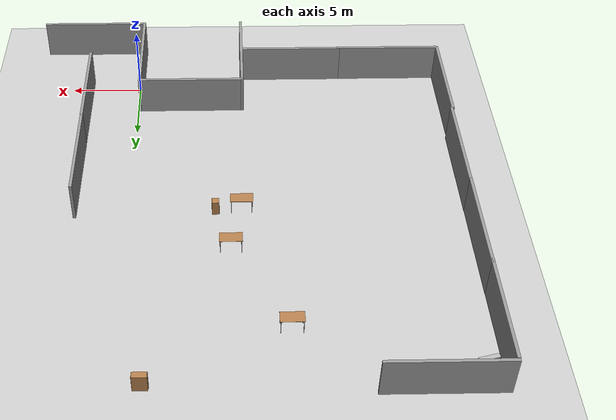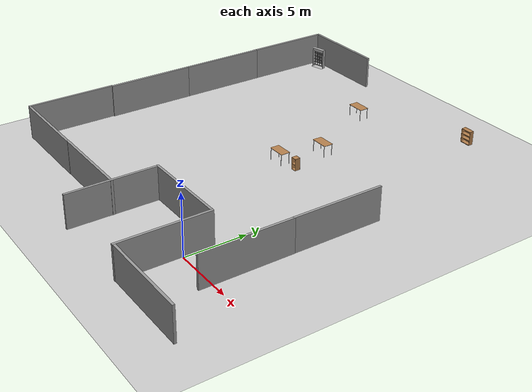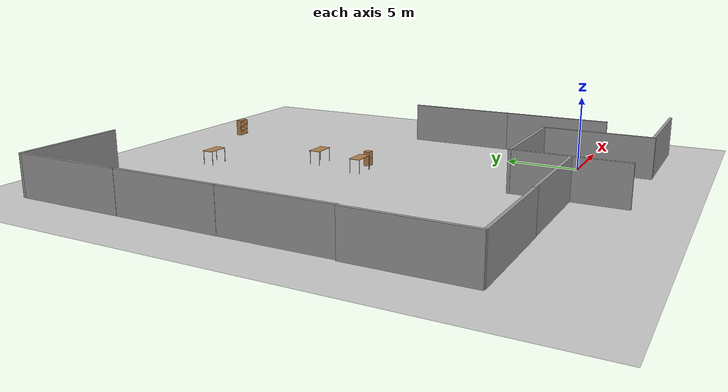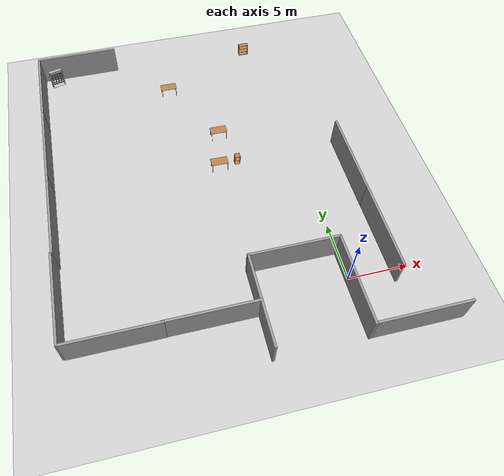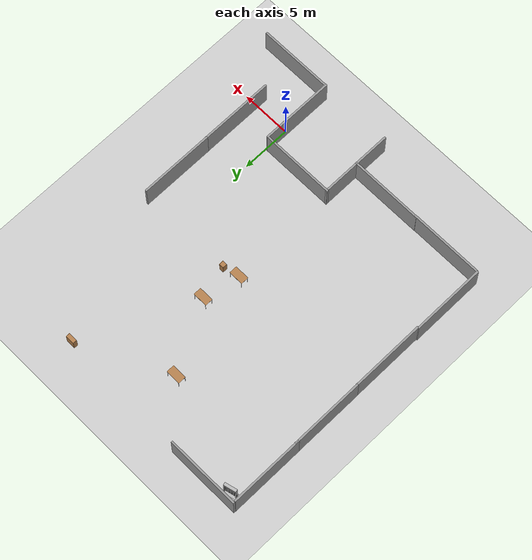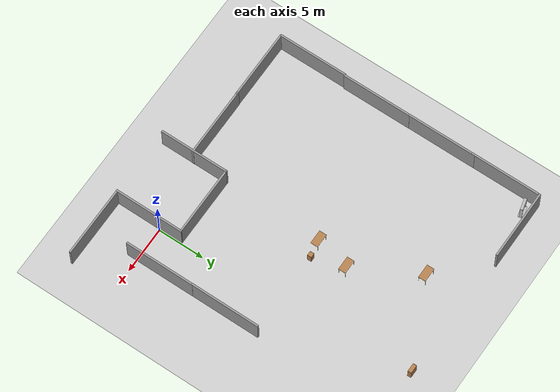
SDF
<sdf version="1.6">
 <world name="default">
  <light name="sun" type="directional">
   <cast_shadows>0</cast_shadows>
   <pose>0 0 10 0 -0 0</pose>
   <diffuse>0.8 0.8 0.8 1</diffuse>
   <specular>0.2 0.2 0.2 1</specular>
   <attenuation>
    <range>1000</range>
    <constant>0.9</constant>
    <linear>0.01</linear>
    <quadratic>0.001</quadratic>
   </attenuation>
   <direction>-0.5 0.1 -0.9</direction>
  </light>
  <gravity>0 0 -9.8</gravity>
  <magnetic_field>6e-06 2.3e-05 -4.2e-05</magnetic_field>
  <atmosphere type="adiabatic"/>
  <physics name="default_physics" default="0" type="ode">
   <max_step_size>0.001</max_step_size>
   <real_time_factor>1</real_time_factor>
   <real_time_update_rate>1000</real_time_update_rate>
  </physics>
  <scene><ambient>0.4 0.4 0.4 1</ambient><background>0.7 0.7 0.7 1</background><shadows>0</shadows></scene>
  <spherical_coordinates>
   <surface_model>EARTH_WGS84</surface_model>
   <latitude_deg>0</latitude_deg>
   <longitude_deg>0</longitude_deg>
   <elevation>0</elevation>
   <heading_deg>0</heading_deg>
  </spherical_coordinates>
  <include><uri>model://ground_plane</uri></include>
  <model name="grey_wall">
   <static>1</static>
   <link name="link">
    <pose>0 0 1.4 0 -0 0</pose>
    <collision name="collision"><geometry><box><size>7.5 0.2 2.8</size></box></geometry></collision>
    <visual name="visual">
     <cast_shadows>0</cast_shadows>
     <geometry><box><size>7.5 0.2 2.8</size></box></geometry>
     <material>
      <script>
       <uri>model://grey_wall/materials/scripts</uri>
       <uri>model://grey_wall/materials/textures</uri>
       <name>vrc/grey_wall</name>
      </script>
     </material>
    </visual>
   </link>
   <pose>3.63341 -4.86067 0 0 -0 0</pose>
  </model>
  <model name="grey_wall_clone">
   <static>1</static>
   <link name="link">
    <pose>0 0 1.4 0 -0 0</pose>
    <collision name="collision"><geometry><box><size>7.5 0.2 2.8</size></box></geometry></collision>
    <visual name="visual">
     <cast_shadows>0</cast_shadows>
     <geometry><box><size>7.5 0.2 2.8</size></box></geometry>
     <material>
      <script>
       <uri>model://grey_wall/materials/scripts</uri>
       <uri>model://grey_wall/materials/textures</uri>
       <name>vrc/grey_wall</name>
      </script>
     </material>
    </visual>
   </link>
   <pose>-18.4919 28.1193 0 0 -0 0</pose>
  </model>
  <model name="grey_wall_clone_0_clone">
   <static>1</static>
   <link name="link">
    <pose>0 0 1.4 0 -0 0</pose>
    <collision name="collision"><geometry><box><size>7.5 0.2 2.8</size></box></geometry></collision>
    <visual name="visual">
     <cast_shadows>0</cast_shadows>
     <geometry><box><size>7.5 0.2 2.8</size></box></geometry>
     <material>
      <script>
       <uri>model://grey_wall/materials/scripts</uri>
       <uri>model://grey_wall/materials/textures</uri>
       <name>vrc/grey_wall</name>
      </script>
     </material>
    </visual>
   </link>
   <pose>-22.1656 24.2441 0 0 -0 1.5708</pose>
  </model>
  <model name="grey_wall_clone_0_clone_0">
   <static>1</static>
   <link name="link">
    <pose>0 0 1.4 0 -0 0</pose>
    <collision name="collision"><geometry><box><size>7.5 0.2 2.8</size></box></geometry></collision>
    <visual name="visual">
     <cast_shadows>0</cast_shadows>
     <geometry><box><size>7.5 0.2 2.8</size></box></geometry>
     <material>
      <script>
       <uri>model://grey_wall/materials/scripts</uri>
       <uri>model://grey_wall/materials/textures</uri>
       <name>vrc/grey_wall</name>
      </script>
     </material>
    </visual>
   </link>
   <pose>-22.1565 17.1441 0 0 -0 1.5708</pose>
  </model>
  <model name="grey_wall_clone_0_clone_1">
   <static>1</static>
   <link name="link">
    <pose>0 0 1.4 0 -0 0</pose>
    <collision name="collision"><geometry><box><size>7.5 0.2 2.8</size></box></geometry></collision>
    <visual name="visual">
     <cast_shadows>0</cast_shadows>
     <geometry><box><size>7.5 0.2 2.8</size></box></geometry>
     <material>
      <script>
       <uri>model://grey_wall/materials/scripts</uri>
       <uri>model://grey_wall/materials/textures</uri>
       <name>vrc/grey_wall</name>
      </script>
     </material>
    </visual>
   </link>
   <pose>-22.146 9.771 0 0 -0 1.5708</pose>
  </model>
  <model name="table_clone">
   <static>1</static>
   <link name="link">
    <collision name="surface">
     <pose>0 0 1 0 -0 0</pose>
     <geometry><box><size>1.5 0.8 0.03</size></box></geometry>
     <surface><friction><ode><mu>0.6</mu><mu2>0.6</mu2></ode></friction></surface>
    </collision>
    <visual name="visual1">
     <pose>0 0 1 0 -0 0</pose>
     <geometry><box><size>1.5 0.8 0.03</size></box></geometry>
     <material>
      <script><uri>file://media/materials/scripts/gazebo.material</uri><name>Gazebo/Wood</name></script>
     </material>
    </visual>
    <collision name="front_left_leg">
     <pose>0.68 0.38 0.5 0 -0 0</pose>
     <geometry><cylinder><radius>0.02</radius><length>1</length></cylinder></geometry>
    </collision>
    <visual name="front_left_leg">
     <pose>0.68 0.38 0.5 0 -0 0</pose>
     <geometry><cylinder><radius>0.02</radius><length>1</length></cylinder></geometry>
     <material>
      <script><uri>file://media/materials/scripts/gazebo.material</uri><name>Gazebo/Grey</name></script>
     </material>
    </visual>
    <collision name="front_right_leg">
     <pose>0.68 -0.38 0.5 0 -0 0</pose>
     <geometry><cylinder><radius>0.02</radius><length>1</length></cylinder></geometry>
    </collision>
    <visual name="front_right_leg">
     <pose>0.68 -0.38 0.5 0 -0 0</pose>
     <geometry><cylinder><radius>0.02</radius><length>1</length></cylinder></geometry>
     <material>
      <script><uri>file://media/materials/scripts/gazebo.material</uri><name>Gazebo/Grey</name></script>
     </material>
    </visual>
    <collision name="back_right_leg">
     <pose>-0.68 -0.38 0.5 0 -0 0</pose>
     <geometry><cylinder><radius>0.02</radius><length>1</length></cylinder></geometry>
    </collision>
    <visual name="back_right_leg">
     <pose>-0.68 -0.38 0.5 0 -0 0</pose>
     <geometry><cylinder><radius>0.02</radius><length>1</length></cylinder></geometry>
     <material>
      <script><uri>file://media/materials/scripts/gazebo.material</uri><name>Gazebo/Grey</name></script>
     </material>
    </visual>
    <collision name="back_left_leg">
     <pose>-0.68 0.38 0.5 0 -0 0</pose>
     <geometry><cylinder><radius>0.02</radius><length>1</length></cylinder></geometry>
    </collision>
    <visual name="back_left_leg">
     <pose>-0.68 0.38 0.5 0 -0 0</pose>
     <geometry><cylinder><radius>0.02</radius><length>1</length></cylinder></geometry>
     <material>
      <script><uri>file://media/materials/scripts/gazebo.material</uri><name>Gazebo/Grey</name></script>
     </material>
    </visual>
   </link>
   <pose>-6.65004 16.737 0 0 -0 0</pose>
  </model>
  <model name="table_clone_0">
   <static>1</static>
   <link name="link">
    <collision name="surface">
     <pose>0 0 1 0 -0 0</pose>
     <geometry><box><size>1.5 0.8 0.03</size></box></geometry>
     <surface><friction><ode><mu>0.6</mu><mu2>0.6</mu2></ode></friction></surface>
    </collision>
    <visual name="visual1">
     <pose>0 0 1 0 -0 0</pose>
     <geometry><box><size>1.5 0.8 0.03</size></box></geometry>
     <material>
      <script><uri>file://media/materials/scripts/gazebo.material</uri><name>Gazebo/Wood</name></script>
     </material>
    </visual>
    <collision name="front_left_leg">
     <pose>0.68 0.38 0.5 0 -0 0</pose>
     <geometry><cylinder><radius>0.02</radius><length>1</length></cylinder></geometry>
    </collision>
    <visual name="front_left_leg">
     <pose>0.68 0.38 0.5 0 -0 0</pose>
     <geometry><cylinder><radius>0.02</radius><length>1</length></cylinder></geometry>
     <material>
      <script><uri>file://media/materials/scripts/gazebo.material</uri><name>Gazebo/Grey</name></script>
     </material>
    </visual>
    <collision name="front_right_leg">
     <pose>0.68 -0.38 0.5 0 -0 0</pose>
     <geometry><cylinder><radius>0.02</radius><length>1</length></cylinder></geometry>
    </collision>
    <visual name="front_right_leg">
     <pose>0.68 -0.38 0.5 0 -0 0</pose>
     <geometry><cylinder><radius>0.02</radius><length>1</length></cylinder></geometry>
     <material>
      <script><uri>file://media/materials/scripts/gazebo.material</uri><name>Gazebo/Grey</name></script>
     </material>
    </visual>
    <collision name="back_right_leg">
     <pose>-0.68 -0.38 0.5 0 -0 0</pose>
     <geometry><cylinder><radius>0.02</radius><length>1</length></cylinder></geometry>
    </collision>
    <visual name="back_right_leg">
     <pose>-0.68 -0.38 0.5 0 -0 0</pose>
     <geometry><cylinder><radius>0.02</radius><length>1</length></cylinder></geometry>
     <material>
      <script><uri>file://media/materials/scripts/gazebo.material</uri><name>Gazebo/Grey</name></script>
     </material>
    </visual>
    <collision name="back_left_leg">
     <pose>-0.68 0.38 0.5 0 -0 0</pose>
     <geometry><cylinder><radius>0.02</radius><length>1</length></cylinder></geometry>
    </collision>
    <visual name="back_left_leg">
     <pose>-0.68 0.38 0.5 0 -0 0</pose>
     <geometry><cylinder><radius>0.02</radius><length>1</length></cylinder></geometry>
     <material>
      <script><uri>file://media/materials/scripts/gazebo.material</uri><name>Gazebo/Grey</name></script>
     </material>
    </visual>
   </link>
   <pose>-7.38643 13.0983 0 0 -0 0</pose>
  </model>
  <model name="cabinet">
   <static>1</static>
   <link name="cabinet_bottom_plate">
    <inertial>
     <pose>0 0 -1 0 -0 0</pose>
     <inertia><ixx>2.05</ixx><ixy>0</ixy><ixz>0</ixz><iyy>2.05</iyy><iyz>0</iyz><izz>2.05</izz></inertia>
     <mass>25</mass>
    </inertial>
    <collision name="cabinet_bottom_plate_geom">
     <pose>0 0 0.01 0 -0 0</pose>
     <geometry><box><size>0.45 0.45 0.02</size></box></geometry>
    </collision>
    <visual name="cabinet_bottom_plate_geom_visual">
     <pose>0 0 0.01 0 -0 0</pose>
     <geometry><box><size>0.45 0.45 0.02</size></box></geometry>
     <material>
      <script><uri>file://media/materials/scripts/gazebo.material</uri><name>Gazebo/Wood</name></script>
     </material>
    </visual>
    <collision name="cabinet_bottom_plate_geom_cabinet_back_plate">
     <pose>0.235 0 0.51 0 -0 0</pose>
     <geometry><box><size>0.02 0.45 1.02</size></box></geometry>
    </collision>
    <visual name="cabinet_bottom_plate_geom_cabinet_back_plate_visual">
     <pose>0.235 0 0.51 0 -0 0</pose>
     <geometry><box><size>0.02 0.45 1.02</size></box></geometry>
     <material>
      <script><uri>file://media/materials/scripts/gazebo.material</uri><name>Gazebo/Wood</name></script>
     </material>
    </visual>
    <collision name="cabinet_bottom_plate_geom_cabinet_left_plate">
     <pose>0 0.235 0.51 0 -0 0</pose>
     <geometry><box><size>0.45 0.02 1.02</size></box></geometry>
    </collision>
    <visual name="cabinet_bottom_plate_geom_cabinet_left_plate_visual">
     <pose>0 0.235 0.51 0 -0 0</pose>
     <geometry><box><size>0.45 0.02 1.02</size></box></geometry>
     <material>
      <script><uri>file://media/materials/scripts/gazebo.material</uri><name>Gazebo/Wood</name></script>
     </material>
    </visual>
    <collision name="cabinet_bottom_plate_geom_cabinet_middle_plate">
     <pose>0 0 0.51 0 -0 0</pose>
     <geometry><box><size>0.45 0.45 0.02</size></box></geometry>
    </collision>
    <visual name="cabinet_bottom_plate_geom_cabinet_middle_plate_visual">
     <pose>0 0 0.51 0 -0 0</pose>
     <geometry><box><size>0.45 0.45 0.02</size></box></geometry>
     <material>
      <script><uri>file://media/materials/scripts/gazebo.material</uri><name>Gazebo/Wood</name></script>
     </material>
    </visual>
    <collision name="cabinet_bottom_plate_geom_cabinet_right_plate">
     <pose>0 -0.235 0.51 0 -0 0</pose>
     <geometry><box><size>0.45 0.02 1.02</size></box></geometry>
    </collision>
    <visual name="cabinet_bottom_plate_geom_cabinet_right_plate_visual">
     <pose>0 -0.235 0.51 0 -0 0</pose>
     <geometry><box><size>0.45 0.02 1.02</size></box></geometry>
     <material>
      <script><uri>file://media/materials/scripts/gazebo.material</uri><name>Gazebo/Wood</name></script>
     </material>
    </visual>
    <collision name="cabinet_bottom_plate_geom_cabinet_top_plate">
     <pose>0 0 1.01 0 -0 0</pose>
     <geometry><box><size>0.45 0.45 0.02</size></box></geometry>
    </collision>
    <visual name="cabinet_bottom_plate_geom_cabinet_top_plate_visual">
     <pose>0 0 1.01 0 -0 0</pose>
     <geometry><box><size>0.45 0.45 0.02</size></box></geometry>
     <material>
      <script><uri>file://media/materials/scripts/gazebo.material</uri><name>Gazebo/Wood</name></script>
     </material>
    </visual>
   </link>
   <pose>-5.672 13.3669 0 0 -0 1.57</pose>
  </model>
  <model name="frc2016_portcullis_clone">
   <link name="base">
    <inertial>
     <mass>50</mass>
     <pose>0 0 1.02941 0 -0 0</pose>
     <inertia><ixx>3.81711</ixx><ixy>0</ixy><ixz>0</ixz><iyy>4.87698</iyy><iyz>0</iyz><izz>1.6283</izz></inertia>
    </inertial>
    <visual name="platform">
     <pose>0 0 0.07284 0 -0 0</pose>
     <geometry><box><size>1.27 0.5842 0.003175</size></box></geometry>
    </visual>
    <collision name="platform">
     <pose>0 0 0.07284 0 -0 0</pose>
     <geometry><box><size>1.27 0.5842 0.003175</size></box></geometry>
    </collision>
    <visual name="left_column">
     <pose>0.59284 0 0.99042 0 -0 0</pose>
     <geometry><box><size>0.08375 0.28575 1.83198</size></box></geometry>
    </visual>
    <collision name="left_column">
     <pose>0.59284 0 0.99042 0 -0 0</pose>
     <geometry><box><size>0.08375 0.28575 1.83198</size></box></geometry>
    </collision>
    <visual name="right_column">
     <pose>-0.57759 0 0.99042 0 -0 0</pose>
     <geometry><box><size>0.08375 0.28575 1.83198</size></box></geometry>
    </visual>
    <collision name="right_column">
     <pose>-0.57759 0 0.99042 0 -0 0</pose>
     <geometry><box><size>0.08375 0.28575 1.83198</size></box></geometry>
    </collision>
    <visual name="top">
     <pose>-0.00034 0 1.77722 0 -0 0</pose>
     <geometry><box><size>1.22962 0.28575 0.26657</size></box></geometry>
    </visual>
    <collision name="top">
     <pose>-0.00034 0 1.77722 0 -0 0</pose>
     <geometry><box><size>1.22962 0.28575 0.26657</size></box></geometry>
    </collision>
    <visual name="castor1">
     <pose>-0.45651 -0.16234 0.03272 0 -0 0</pose>
     <geometry><sphere><radius>0.03272</radius></sphere></geometry>
    </visual>
    <collision name="castor1">
     <pose>-0.45651 -0.16234 0.03272 0 -0 0</pose>
     <geometry><sphere><radius>0.03272</radius></sphere></geometry>
    </collision>
    <visual name="castor2">
     <pose>-0.27883 0.21836 0.03272 0 -0 0</pose>
     <geometry><sphere><radius>0.03272</radius></sphere></geometry>
    </visual>
    <collision name="castor2">
     <pose>-0.27883 0.21836 0.03272 0 -0 0</pose>
     <geometry><sphere><radius>0.03272</radius></sphere></geometry>
    </collision>
    <visual name="castor3">
     <pose>0.28083 0.21906 0.03272 0 -0 0</pose>
     <geometry><sphere><radius>0.03272</radius></sphere></geometry>
    </visual>
    <collision name="castor3">
     <pose>0.28083 0.21906 0.03272 0 -0 0</pose>
     <geometry><sphere><radius>0.03272</radius></sphere></geometry>
    </collision>
    <visual name="castor4">
     <pose>0.45871 -0.16186 0.03272 0 -0 0</pose>
     <geometry><sphere><radius>0.03272</radius></sphere></geometry>
    </visual>
    <collision name="castor4">
     <pose>0.45871 -0.16186 0.03272 0 -0 0</pose>
     <geometry><sphere><radius>0.03272</radius></sphere></geometry>
    </collision>
   </link>
   <link name="gate">
    <pose>-0.0287 0.02885 0.93327 0 -0 0</pose>
    <inertial>
     <mass>2</mass>
     <inertia><ixx>3.81711</ixx><ixy>0</ixy><ixz>0</ixz><iyy>4.87698</iyy><iyz>0</iyz><izz>1.6283</izz></inertia>
    </inertial>
    <collision name="collision"><geometry><box><size>1.1938 0.02496 1.45732</size></box></geometry></collision>
    <visual name="horz_1">
     <pose>0 0 -0.70326 0 -0 0</pose>
     <geometry><box><size>1.1938 0.02496 0.0508</size></box></geometry>
     <material><ambient>0.4 0.4 0.4 1</ambient><diffuse>0.4 0.4 0.4 1</diffuse></material>
    </visual>
    <visual name="horz_2">
     <pose>0 0 -0.44926 0 -0 0</pose>
     <geometry><box><size>1.1938 0.02496 0.0508</size></box></geometry>
     <material><ambient>0.4 0.4 0.4 1</ambient><diffuse>0.4 0.4 0.4 1</diffuse></material>
    </visual>
    <visual name="horz_3">
     <pose>0 0 -0.14517 0 -0 0</pose>
     <geometry><box><size>1.1938 0.02496 0.0508</size></box></geometry>
     <material><ambient>0.4 0.4 0.4 1</ambient><diffuse>0.4 0.4 0.4 1</diffuse></material>
    </visual>
    <visual name="horz_4">
     <pose>0 0 0.16034 0 -0 0</pose>
     <geometry><box><size>1.1938 0.02496 0.0508</size></box></geometry>
     <material><ambient>0.4 0.4 0.4 1</ambient><diffuse>0.4 0.4 0.4 1</diffuse></material>
    </visual>
    <visual name="horz_5">
     <pose>0 0 0.46514 0 -0 0</pose>
     <geometry><box><size>1.1938 0.02496 0.0508</size></box></geometry>
     <material><ambient>0.4 0.4 0.4 1</ambient><diffuse>0.4 0.4 0.4 1</diffuse></material>
    </visual>
    <visual name="horz_6">
     <pose>0 0 0.72994 0 -0 0</pose>
     <geometry><box><size>1.1938 0.02496 0.0508</size></box></geometry>
     <material><ambient>0.4 0.4 0.4 1</ambient><diffuse>0.4 0.4 0.4 1</diffuse></material>
    </visual>
    <visual name="vert_1">
     <pose>-0.58448 0 0 0 -0 0</pose>
     <geometry><box><size>0.02495 0.02496 1.45732</size></box></geometry>
     <material><ambient>0.4 0.4 0.4 1</ambient><diffuse>0.4 0.4 0.4 1</diffuse></material>
    </visual>
    <visual name="vert_2">
     <pose>-0.38128 0 0 0 -0 0</pose>
     <geometry><box><size>0.0508 0.02496 1.45732</size></box></geometry>
     <material><ambient>0.4 0.4 0.4 1</ambient><diffuse>0.4 0.4 0.4 1</diffuse></material>
    </visual>
    <visual name="vert_3">
     <pose>-0.12728 0 0 0 -0 0</pose>
     <geometry><box><size>0.0508 0.02496 1.45732</size></box></geometry>
     <material><ambient>0.4 0.4 0.4 1</ambient><diffuse>0.4 0.4 0.4 1</diffuse></material>
    </visual>
    <visual name="vert_4">
     <pose>0.12672 0 0 0 -0 0</pose>
     <geometry><box><size>0.0508 0.02496 1.45732</size></box></geometry>
     <material><ambient>0.4 0.4 0.4 1</ambient><diffuse>0.4 0.4 0.4 1</diffuse></material>
    </visual>
    <visual name="vert_5">
     <pose>0.38072 0 0 0 -0 0</pose>
     <geometry><box><size>0.0508 0.02496 1.45732</size></box></geometry>
     <material><ambient>0.4 0.4 0.4 1</ambient><diffuse>0.4 0.4 0.4 1</diffuse></material>
    </visual>
    <visual name="vert_6">
     <pose>0.58392 0 0 0 -0 0</pose>
     <geometry><box><size>0.02495 0.02496 1.45732</size></box></geometry>
     <material><ambient>0.4 0.4 0.4 1</ambient><diffuse>0.4 0.4 0.4 1</diffuse></material>
    </visual>
   </link>
   <joint name="joint" type="prismatic">
    <parent>base</parent>
    <child>gate</child>
    <axis>
     <xyz>0 0 1</xyz>
     <limit><lower>0</lower><upper>1</upper></limit>
     <use_parent_model_frame>0</use_parent_model_frame>
     <dynamics><spring_reference>0</spring_reference><spring_stiffness>0</spring_stiffness></dynamics>
    </axis>
   </joint>
   <pose>-20.851 27.223 0 1e-06 -1e-06 0.247841</pose>
  </model>
  <model name="grey_wall_clone_0_clone_1_clone">
   <static>1</static>
   <link name="link">
    <pose>0 0 1.4 0 -0 0</pose>
    <collision name="collision"><geometry><box><size>7.5 0.2 2.8</size></box></geometry></collision>
    <visual name="visual">
     <cast_shadows>0</cast_shadows>
     <geometry><box><size>7.5 0.2 2.8</size></box></geometry>
     <material>
      <script>
       <uri>model://grey_wall/materials/scripts</uri>
       <uri>model://grey_wall/materials/textures</uri>
       <name>vrc/grey_wall</name>
      </script>
     </material>
    </visual>
   </link>
   <pose>-22.2362 2.34177 0 0 -0 1.5708</pose>
  </model>
  <model name="grey_wall_clone_0">
   <static>1</static>
   <link name="link">
    <pose>0 0 1.4 0 -0 0</pose>
    <collision name="collision"><geometry><box><size>7.5 0.2 2.8</size></box></geometry></collision>
    <visual name="visual">
     <cast_shadows>0</cast_shadows>
     <geometry><box><size>7.5 0.2 2.8</size></box></geometry>
     <material>
      <script>
       <uri>model://grey_wall/materials/scripts</uri>
       <uri>model://grey_wall/materials/textures</uri>
       <name>vrc/grey_wall</name>
      </script>
     </material>
    </visual>
   </link>
   <pose>-18.4446 -1.354 0 0 -0 0</pose>
  </model>
  <model name="grey_wall_clone_1">
   <static>1</static>
   <link name="link">
    <pose>0 0 1.4 0 -0 0</pose>
    <collision name="collision"><geometry><box><size>7.5 0.2 2.8</size></box></geometry></collision>
    <visual name="visual">
     <cast_shadows>0</cast_shadows>
     <geometry><box><size>7.5 0.2 2.8</size></box></geometry>
     <material>
      <script>
       <uri>model://grey_wall/materials/scripts</uri>
       <uri>model://grey_wall/materials/textures</uri>
       <name>vrc/grey_wall</name>
      </script>
     </material>
    </visual>
   </link>
   <pose>-11.2101 -1.32923 0 0 -0 0</pose>
  </model>
  <model name="grey_wall_clone_0_clone_1_clone_clone">
   <static>1</static>
   <link name="link">
    <pose>0 0 1.4 0 -0 0</pose>
    <collision name="collision"><geometry><box><size>7.5 0.2 2.8</size></box></geometry></collision>
    <visual name="visual">
     <cast_shadows>0</cast_shadows>
     <geometry><box><size>7.5 0.2 2.8</size></box></geometry>
     <material>
      <script>
       <uri>model://grey_wall/materials/scripts</uri>
       <uri>model://grey_wall/materials/textures</uri>
       <name>vrc/grey_wall</name>
      </script>
     </material>
    </visual>
   </link>
   <pose>-7.58552 -1.2167 0 0 -0 1.5708</pose>
  </model>
  <model name="grey_wall_clone_2">
   <static>1</static>
   <link name="link">
    <pose>0 0 1.4 0 -0 0</pose>
    <collision name="collision"><geometry><box><size>7.5 0.2 2.8</size></box></geometry></collision>
    <visual name="visual">
     <cast_shadows>0</cast_shadows>
     <geometry><box><size>7.5 0.2 2.8</size></box></geometry>
     <material>
      <script>
       <uri>model://grey_wall/materials/scripts</uri>
       <uri>model://grey_wall/materials/textures</uri>
       <name>vrc/grey_wall</name>
      </script>
     </material>
    </visual>
   </link>
   <pose>-3.95132 2.42818 0 0 -0 0</pose>
  </model>
  <model name="grey_wall_clone_0_clone_1_clone_clone_clone">
   <static>1</static>
   <link name="link">
    <pose>0 0 1.4 0 -0 0</pose>
    <collision name="collision"><geometry><box><size>7.5 0.2 2.8</size></box></geometry></collision>
    <visual name="visual">
     <cast_shadows>0</cast_shadows>
     <geometry><box><size>7.5 0.2 2.8</size></box></geometry>
     <material>
      <script>
       <uri>model://grey_wall/materials/scripts</uri>
       <uri>model://grey_wall/materials/textures</uri>
       <name>vrc/grey_wall</name>
      </script>
     </material>
    </visual>
   </link>
   <pose>-0.193862 -1.22935 0 0 -0 1.5708</pose>
  </model>
  <model name="table">
   <static>1</static>
   <link name="link">
    <collision name="surface">
     <pose>0 0 1 0 -0 0</pose>
     <geometry><box><size>1.5 0.8 0.03</size></box></geometry>
     <surface><friction><ode><mu>0.6</mu><mu2>0.6</mu2></ode></friction></surface>
    </collision>
    <visual name="visual1">
     <pose>0 0 1 0 -0 0</pose>
     <geometry><box><size>1.5 0.8 0.03</size></box></geometry>
     <material>
      <script><uri>file://media/materials/scripts/gazebo.material</uri><name>Gazebo/Wood</name></script>
     </material>
    </visual>
    <collision name="front_left_leg">
     <pose>0.68 0.38 0.5 0 -0 0</pose>
     <geometry><cylinder><radius>0.02</radius><length>1</length></cylinder></geometry>
    </collision>
    <visual name="front_left_leg">
     <pose>0.68 0.38 0.5 0 -0 0</pose>
     <geometry><cylinder><radius>0.02</radius><length>1</length></cylinder></geometry>
     <material>
      <script><uri>file://media/materials/scripts/gazebo.material</uri><name>Gazebo/Grey</name></script>
     </material>
    </visual>
    <collision name="front_right_leg">
     <pose>0.68 -0.38 0.5 0 -0 0</pose>
     <geometry><cylinder><radius>0.02</radius><length>1</length></cylinder></geometry>
    </collision>
    <visual name="front_right_leg">
     <pose>0.68 -0.38 0.5 0 -0 0</pose>
     <geometry><cylinder><radius>0.02</radius><length>1</length></cylinder></geometry>
     <material>
      <script><uri>file://media/materials/scripts/gazebo.material</uri><name>Gazebo/Grey</name></script>
     </material>
    </visual>
    <collision name="back_right_leg">
     <pose>-0.68 -0.38 0.5 0 -0 0</pose>
     <geometry><cylinder><radius>0.02</radius><length>1</length></cylinder></geometry>
    </collision>
    <visual name="back_right_leg">
     <pose>-0.68 -0.38 0.5 0 -0 0</pose>
     <geometry><cylinder><radius>0.02</radius><length>1</length></cylinder></geometry>
     <material>
      <script><uri>file://media/materials/scripts/gazebo.material</uri><name>Gazebo/Grey</name></script>
     </material>
    </visual>
    <collision name="back_left_leg">
     <pose>-0.68 0.38 0.5 0 -0 0</pose>
     <geometry><cylinder><radius>0.02</radius><length>1</length></cylinder></geometry>
    </collision>
    <visual name="back_left_leg">
     <pose>-0.68 0.38 0.5 0 -0 0</pose>
     <geometry><cylinder><radius>0.02</radius><length>1</length></cylinder></geometry>
     <material>
      <script><uri>file://media/materials/scripts/gazebo.material</uri><name>Gazebo/Grey</name></script>
     </material>
    </visual>
   </link>
   <pose>-10.1869 23.3588 0 0 -0 0</pose>
  </model>
  <model name="bookshelf">
   <static>1</static>
   <link name="link">
    <inertial><mass>1</mass></inertial>
    <collision name="back">
     <pose>0 0.005 0.6 0 -0 0</pose>
     <geometry><box><size>0.9 0.01 1.2</size></box></geometry>
    </collision>
    <visual name="visual1">
     <pose>0 0.005 0.6 0 -0 0</pose>
     <geometry><box><size>0.9 0.01 1.2</size></box></geometry>
     <material>
      <script><uri>file://media/materials/scripts/gazebo.material</uri><name>Gazebo/Wood</name></script>
     </material>
    </visual>
    <collision name="left_side">
     <pose>0.45 -0.195 0.6 0 -0 0</pose>
     <geometry><box><size>0.02 0.4 1.2</size></box></geometry>
    </collision>
    <visual name="visual2">
     <pose>0.45 -0.195 0.6 0 -0 0</pose>
     <geometry><box><size>0.02 0.4 1.2</size></box></geometry>
     <material>
      <script><uri>file://media/materials/scripts/gazebo.material</uri><name>Gazebo/Wood</name></script>
     </material>
    </visual>
    <collision name="right_side">
     <pose>-0.45 -0.195 0.6 0 -0 0</pose>
     <geometry><box><size>0.02 0.4 1.2</size></box></geometry>
    </collision>
    <visual name="visual3">
     <pose>-0.45 -0.195 0.6 0 -0 0</pose>
     <geometry><box><size>0.02 0.4 1.2</size></box></geometry>
     <material>
      <script><uri>file://media/materials/scripts/gazebo.material</uri><name>Gazebo/Wood</name></script>
     </material>
    </visual>
    <collision name="bottom">
     <pose>0 -0.195 0.03 0 -0 0</pose>
     <geometry><box><size>0.88 0.4 0.06</size></box></geometry>
    </collision>
    <visual name="visual4">
     <pose>0 -0.195 0.03 0 -0 0</pose>
     <geometry><box><size>0.88 0.4 0.06</size></box></geometry>
     <material>
      <script><uri>file://media/materials/scripts/gazebo.material</uri><name>Gazebo/Wood</name></script>
     </material>
    </visual>
    <collision name="top">
     <pose>0 -0.195 1.19 0 -0 0</pose>
     <geometry><box><size>0.88 0.4 0.02</size></box></geometry>
    </collision>
    <visual name="visual5">
     <pose>0 -0.195 1.19 0 -0 0</pose>
     <geometry><box><size>0.88 0.4 0.02</size></box></geometry>
     <material>
      <script><uri>file://media/materials/scripts/gazebo.material</uri><name>Gazebo/Wood</name></script>
     </material>
    </visual>
    <collision name="low_shelf">
     <pose>0 -0.195 0.43 0 -0 0</pose>
     <geometry><box><size>0.88 0.4 0.02</size></box></geometry>
    </collision>
    <visual name="visual6">
     <pose>0 -0.195 0.43 0 -0 0</pose>
     <geometry><box><size>0.88 0.4 0.02</size></box></geometry>
     <material>
      <script><uri>file://media/materials/scripts/gazebo.material</uri><name>Gazebo/Wood</name></script>
     </material>
    </visual>
    <collision name="high_shelf">
     <pose>0 -0.195 0.8 0 -0 0</pose>
     <geometry><box><size>0.88 0.4 0.02</size></box></geometry>
    </collision>
    <visual name="visual7">
     <pose>0 -0.195 0.8 0 -0 0</pose>
     <geometry><box><size>0.88 0.4 0.02</size></box></geometry>
     <material>
      <script><uri>file://media/materials/scripts/gazebo.material</uri><name>Gazebo/Wood</name></script>
     </material>
    </visual>
   </link>
   <pose>-1.48268 27.7503 0 0 -0 0</pose>
  </model>
  <model name="grey_wall_clone_0_clone_1_clone_clone_1_clone">
   <static>1</static>
   <link name="link">
    <pose>0 0 1.4 0 -0 0</pose>
    <collision name="collision"><geometry><box><size>7.5 0.2 2.8</size></box></geometry></collision>
    <visual name="visual">
     <cast_shadows>0</cast_shadows>
     <geometry><box><size>7.5 0.2 2.8</size></box></geometry>
     <material>
      <script>
       <uri>model://grey_wall/materials/scripts</uri>
       <uri>model://grey_wall/materials/textures</uri>
       <name>vrc/grey_wall</name>
      </script>
     </material>
    </visual>
   </link>
   <pose>3.59188 10.0685 0 0 -0 1.5708</pose>
  </model>
  <model name="grey_wall_clone_0_clone_1_clone_clone_1_clone_0">
   <static>1</static>
   <link name="link">
    <pose>0 0 1.4 0 -0 0</pose>
    <collision name="collision"><geometry><box><size>7.5 0.2 2.8</size></box></geometry></collision>
    <visual name="visual">
     <cast_shadows>0</cast_shadows>
     <geometry><box><size>7.5 0.2 2.8</size></box></geometry>
     <material>
      <script>
       <uri>model://grey_wall/materials/scripts</uri>
       <uri>model://grey_wall/materials/textures</uri>
       <name>vrc/grey_wall</name>
      </script>
     </material>
    </visual>
   </link>
   <pose>3.60251 2.68157 0 0 -0 1.5708</pose>
  </model>
 </world>
</sdf>
